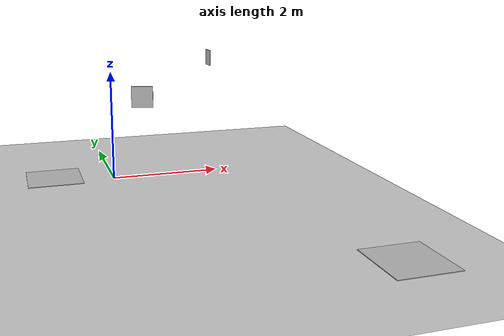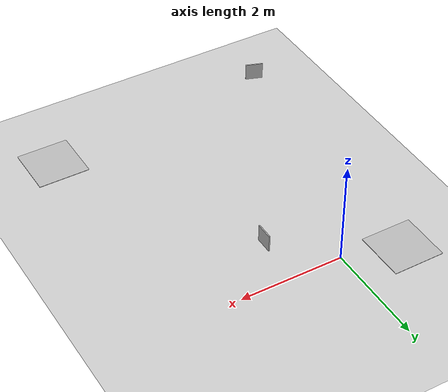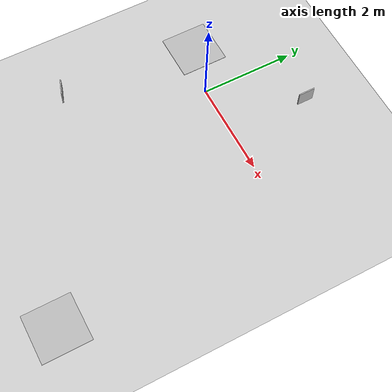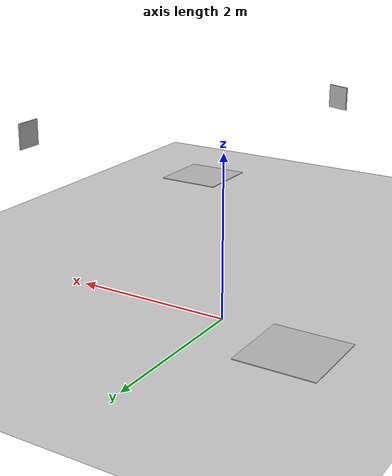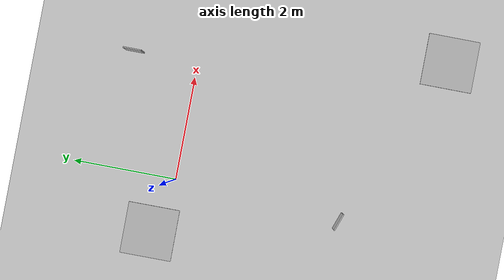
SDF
<sdf version="1.6">
 <world name="default">
  <model name="ground_plane">
   <static>1</static>
   <link name="link">
    <collision name="collision">
     <geometry><plane><normal>0 0 1</normal><size>100 100</size></plane></geometry>
     <surface>
      <contact><collide_bitmask>65535</collide_bitmask></contact>
      <friction><ode><mu>100</mu><mu2>50</mu2></ode></friction>
     </surface>
    </collision>
    <visual name="visual">
     <cast_shadows>0</cast_shadows>
     <geometry><plane><normal>0 0 1</normal><size>100 100</size></plane></geometry>
     <material>
      <script><uri>file://media/materials/scripts/gazebo.material</uri><name>Gazebo/Grey</name></script>
     </material>
    </visual>
   </link>
  </model>
  <light name="sun" type="directional">
   <pose>0 0 10 0 -0 0</pose>
   <diffuse>0.8 0.8 0.8 1</diffuse>
   <specular>0.2 0.2 0.2 1</specular>
   <attenuation>
    <range>1000</range>
    <constant>0.9</constant>
    <linear>0.01</linear>
    <quadratic>0.001</quadratic>
   </attenuation>
   <direction>-0.5 0.1 -0.9</direction>
  </light>
  <model name="color_beacon">
   <link name="link_1">
    <inertial>
     <mass>1</mass>
     <inertia>
      <ixx>0.166667</ixx>
      <ixy>0</ixy>
      <ixz>0</ixz>
      <iyy>0.166667</iyy>
      <iyz>0</iyz>
      <izz>0.166667</izz>
     </inertia>
    </inertial>
    <visual name="visual">
     <geometry><box><size>1 1 0.01</size></box></geometry>
     <material>
      <script>
       <uri>model://color_beacon/materials/scripts</uri>
       <uri>model://color_beacon/materials/textures</uri>
       <name>color_beacon</name>
      </script>
     </material>
    </visual>
    <collision name="collision">
     <geometry><box><size>1 1 0.01</size></box></geometry>
     <surface>
      <friction>
       <ode><mu>1</mu><mu2>1</mu2><fdir1>0 0 0</fdir1><slip1>0</slip1><slip2>0</slip2></ode>
       <torsional>
        <coefficient>1</coefficient>
        <patch_radius>0</patch_radius>
        <surface_radius>0</surface_radius>
        <use_patch_radius>1</use_patch_radius>
        <ode><slip>0</slip></ode>
       </torsional>
      </friction>
      <bounce><restitution_coefficient>0</restitution_coefficient><threshold>1e+06</threshold></bounce>
      <contact>
       <collide_without_contact>0</collide_without_contact>
       <collide_without_contact_bitmask>1</collide_without_contact_bitmask>
       <collide_bitmask>1</collide_bitmask>
       <ode>
        <soft_cfm>0</soft_cfm>
        <soft_erp>0.2</soft_erp>
        <kp>1e+13</kp>
        <kd>1</kd>
        <max_vel>0.01</max_vel>
        <min_depth>0</min_depth>
       </ode>
       <bullet>
        <split_impulse>1</split_impulse>
        <split_impulse_penetration_threshold>-0.01</split_impulse_penetration_threshold>
        <soft_cfm>0</soft_cfm>
        <soft_erp>0.2</soft_erp>
        <kp>1e+13</kp>
        <kd>1</kd>
       </bullet>
      </contact>
     </surface>
    </collision>
   </link>
   <static>0</static>
   <pose>3.20309 -4.79952 0.005 0 -0 0</pose>
  </model>
  <model name="tag_4">
   <pose>2.09249 0.800029 2.10372 -3.14154 -1.56426 3.14153</pose>
   <static>1</static>
   <link name="link">
    <collision name="collision"><geometry><box><size>0.3 0.3 0.02</size></box></geometry></collision>
    <visual name="visual">
     <geometry><box><size>0.3 0.3 0.02</size></box></geometry>
     <material>
      <script><uri>file://tags_material/scripts/tags.material</uri><name>Tag36_11_00004</name></script>
     </material>
    </visual>
    <inertial>
     <inertia><ixx>1</ixx><ixy>0</ixy><ixz>0</ixz><iyy>1</iyy><iyz>0</iyz><izz>1</izz></inertia>
     <mass>1</mass>
    </inertial>
   </link>
   <static>0</static>
  </model>
  <model name="tag_7">
   <pose>-0.028321 -2.98314 2.07499 1.9973 -1.56426 2.37593</pose>
   <static>1</static>
   <link name="link">
    <collision name="collision"><geometry><box><size>0.3 0.3 0.02</size></box></geometry></collision>
    <visual name="visual">
     <geometry><box><size>0.3 0.3 0.02</size></box></geometry>
     <material>
      <script><uri>file://tags_material/scripts/tags.material</uri><name>Tag36_11_00007</name></script>
     </material>
    </visual>
    <inertial>
     <inertia><ixx>1</ixx><ixy>0</ixy><ixz>0</ixz><iyy>1</iyy><iyz>0</iyz><izz>1</izz></inertia>
     <mass>1</mass>
    </inertial>
   </link>
   <static>0</static>
  </model>
  <gravity>0 0 -9.8</gravity>
  <magnetic_field>6e-06 2.3e-05 -4.2e-05</magnetic_field>
  <atmosphere type="adiabatic"/>
  <physics name="default_physics" default="0" type="ode">
   <max_step_size>0.001</max_step_size>
   <real_time_factor>1</real_time_factor>
   <real_time_update_rate>1000</real_time_update_rate>
  </physics>
  <scene><ambient>0.4 0.4 0.4 1</ambient><background>0.7 0.7 0.7 1</background><shadows>1</shadows></scene>
  <spherical_coordinates>
   <surface_model>EARTH_WGS84</surface_model>
   <latitude_deg>0</latitude_deg>
   <longitude_deg>0</longitude_deg>
   <elevation>0</elevation>
   <heading_deg>0</heading_deg>
  </spherical_coordinates>
  <model name="color_beacon_0">
   <link name="link_1">
    <inertial>
     <mass>1</mass>
     <inertia>
      <ixx>0.166667</ixx>
      <ixy>0</ixy>
      <ixz>0</ixz>
      <iyy>0.166667</iyy>
      <iyz>0</iyz>
      <izz>0.166667</izz>
     </inertia>
    </inertial>
    <visual name="visual">
     <geometry><box><size>1 1 0.01</size></box></geometry>
     <material>
      <script>
       <uri>model://color_beacon/materials/scripts</uri>
       <uri>model://color_beacon/materials/textures</uri>
       <name>color_beacon</name>
      </script>
     </material>
    </visual>
    <collision name="collision">
     <geometry><box><size>1 1 0.01</size></box></geometry>
     <surface>
      <friction>
       <ode><mu>1</mu><mu2>1</mu2><fdir1>0 0 0</fdir1><slip1>0</slip1><slip2>0</slip2></ode>
       <torsional>
        <coefficient>1</coefficient>
        <patch_radius>0</patch_radius>
        <surface_radius>0</surface_radius>
        <use_patch_radius>1</use_patch_radius>
        <ode><slip>0</slip></ode>
       </torsional>
      </friction>
      <bounce><restitution_coefficient>0</restitution_coefficient><threshold>1e+06</threshold></bounce>
      <contact>
       <collide_without_contact>0</collide_without_contact>
       <collide_without_contact_bitmask>1</collide_without_contact_bitmask>
       <collide_bitmask>1</collide_bitmask>
       <ode>
        <soft_cfm>0</soft_cfm>
        <soft_erp>0.2</soft_erp>
        <kp>1e+13</kp>
        <kd>1</kd>
        <max_vel>0.01</max_vel>
        <min_depth>0</min_depth>
       </ode>
       <bullet>
        <split_impulse>1</split_impulse>
        <split_impulse_penetration_threshold>-0.01</split_impulse_penetration_threshold>
        <soft_cfm>0</soft_cfm>
        <soft_erp>0.2</soft_erp>
        <kp>1e+13</kp>
        <kd>1</kd>
       </bullet>
      </contact>
     </surface>
    </collision>
   </link>
   <static>0</static>
   <pose>-1.0809 0.307354 0.005 0 -0 0.00378</pose>
  </model>
  <light name="user_directional_light_0" type="directional">
   <pose>-9.18673 7.29832 1 0 -0 0</pose>
   <diffuse>0.5 0.5 0.5 1</diffuse>
   <specular>0.1 0.1 0.1 1</specular>
   <direction>0.1 0.1 -0.9</direction>
   <attenuation>
    <range>20</range>
    <constant>0.5</constant>
    <linear>0.01</linear>
    <quadratic>0.001</quadratic>
   </attenuation>
  </light>
 </world>
</sdf>
